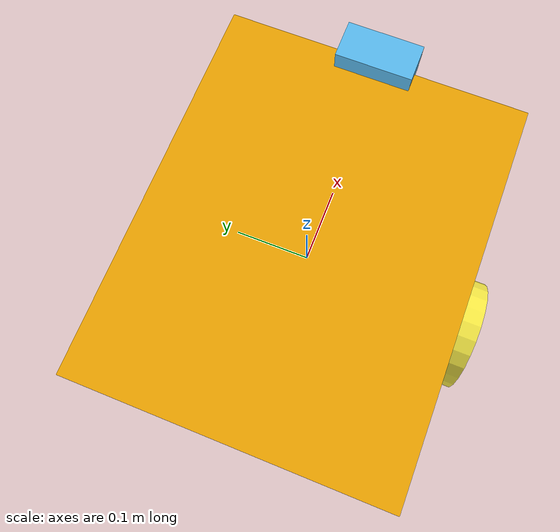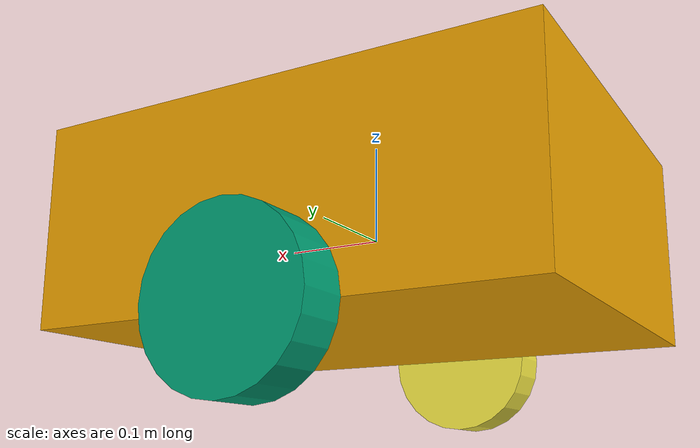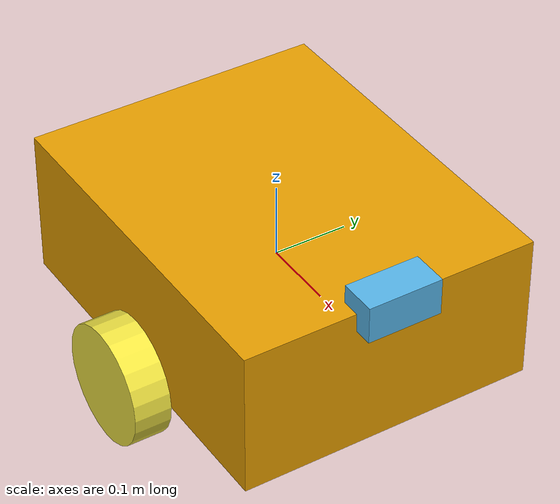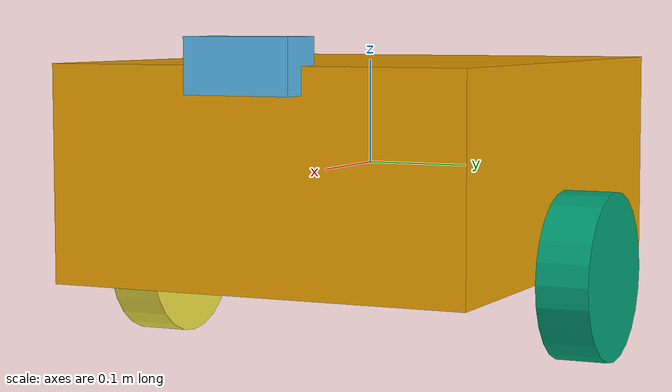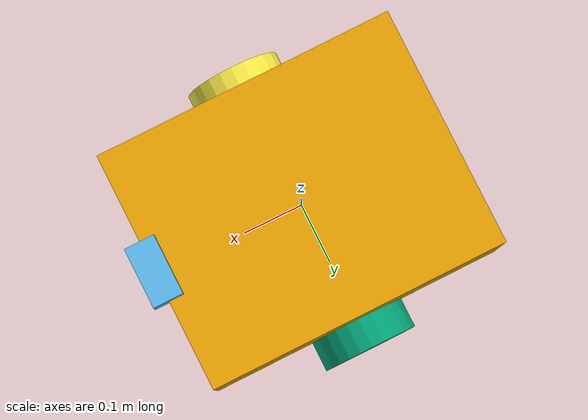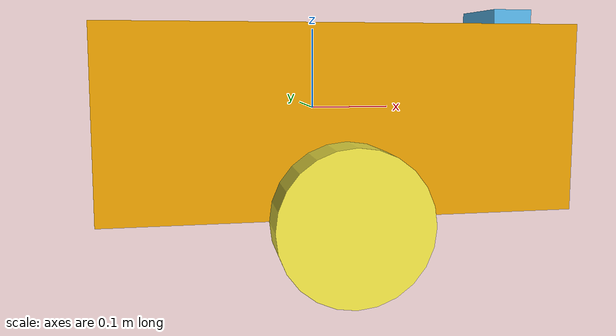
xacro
<?xml version="1.0"?>
<robot name="dominio_robot" xmlns:xacro="http://www.ros.org/wiki/xacro">

  <!-- TODO: medidas de tu robot, en metros y kilogramos. -->
  <xacro:property name="chassis_x" value="0.50"/>
  <xacro:property name="chassis_y" value="0.40"/>
  <xacro:property name="chassis_z" value="0.20"/>
  <xacro:property name="chassis_mass" value="12.0"/>
  <xacro:property name="wheel_radius" value="0.08"/>
  <xacro:property name="wheel_width" value="0.05"/>
  <xacro:property name="wheel_mass" value="0.8"/>

  <!-- Inercia de una caja maciza (teoría 05). -->
  <xacro:macro name="box_inertial" params="mass x y z">
    <inertial>
      <mass value="${mass}"/>
      <inertia ixx="${mass * (y*y + z*z) / 12}" ixy="0" ixz="0"
               iyy="${mass * (x*x + z*z) / 12}" iyz="0"
               izz="${mass * (x*x + y*y) / 12}"/>
    </inertial>
  </xacro:macro>

  <!-- base_link: el cuerpo del robot. Es el marco que mueve sensor_stub
       (odom -> base_link); no le cambies el nombre (REP 105). -->
  <link name="base_link">
    <visual>
      <geometry>
        <box size="${chassis_x} ${chassis_y} ${chassis_z}"/>
      </geometry>
    </visual>
    <collision>
      <geometry>
        <box size="${chassis_x} ${chassis_y} ${chassis_z}"/>
      </geometry>
    </collision>
    <xacro:box_inertial mass="${chassis_mass}" x="${chassis_x}" y="${chassis_y}" z="${chassis_z}"/>
  </link>

  <link name="sensor_link">
    <visual>
      <geometry>
        <box size="0.05 0.10 0.05"/>
      </geometry>
    </visual>
    <xacro:box_inertial mass="0.2" x="0.05" y="0.10" z="0.05"/>
  </link>

  <joint name="sensor_joint" type="fixed">
    <parent link="base_link"/>
    <child link="sensor_link"/>
    <origin xyz="${chassis_x / 2} 0 ${chassis_z / 2}" rpy="0 0 0"/>
  </joint>

  <!--
    Ruedas motrices (Semana 06, Requisito 2). Si ya tienes las de tu robot,
    conserva las tuyas. side: 1 a la izquierda (+y), -1 a la derecha.
  -->
  <xacro:macro name="wheel" params="prefix side">
    <link name="${prefix}_wheel_link">
      <visual>
        <!-- El cilindro de URDF va a lo largo de z: se tumba para que su eje sea y. -->
        <origin xyz="0 0 0" rpy="${-pi/2} 0 0"/>
        <geometry>
          <cylinder radius="${wheel_radius}" length="${wheel_width}"/>
        </geometry>
      </visual>
      <collision>
        <origin xyz="0 0 0" rpy="${-pi/2} 0 0"/>
        <geometry>
          <cylinder radius="${wheel_radius}" length="${wheel_width}"/>
        </geometry>
      </collision>
      <!-- Cilindro macizo que gira alrededor de y: el término m·r²/2 va en iyy. -->
      <inertial>
        <mass value="${wheel_mass}"/>
        <inertia ixx="${wheel_mass * (3*wheel_radius*wheel_radius + wheel_width*wheel_width) / 12}"
                 ixy="0" ixz="0"
                 iyy="${wheel_mass * wheel_radius*wheel_radius / 2}" iyz="0"
                 izz="${wheel_mass * (3*wheel_radius*wheel_radius + wheel_width*wheel_width) / 12}"/>
      </inertial>
    </link>

    <joint name="${prefix}_wheel_joint" type="continuous">
      <parent link="base_link"/>
      <child link="${prefix}_wheel_link"/>
      <origin xyz="0 ${side * (chassis_y / 2 + wheel_width / 2)} ${-chassis_z / 2}" rpy="0 0 0"/>
      <axis xyz="0 1 0"/>
    </joint>
  </xacro:macro>

  <xacro:wheel prefix="left" side="1"/>
  <xacro:wheel prefix="right" side="-1"/>

</robot>
